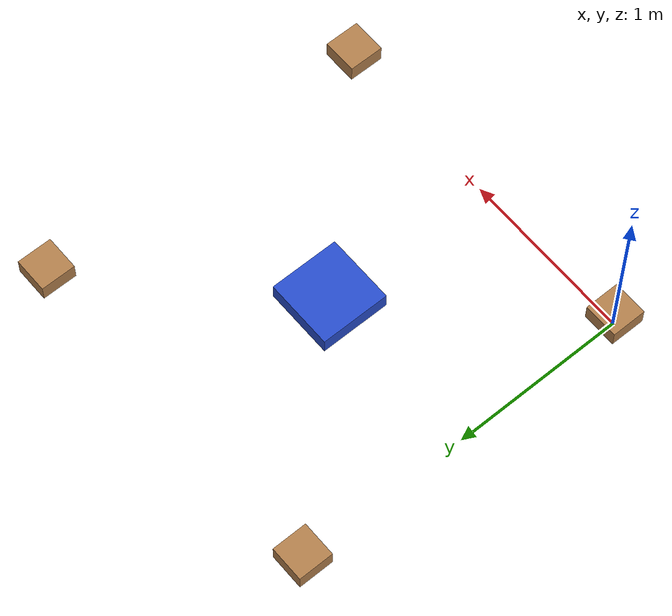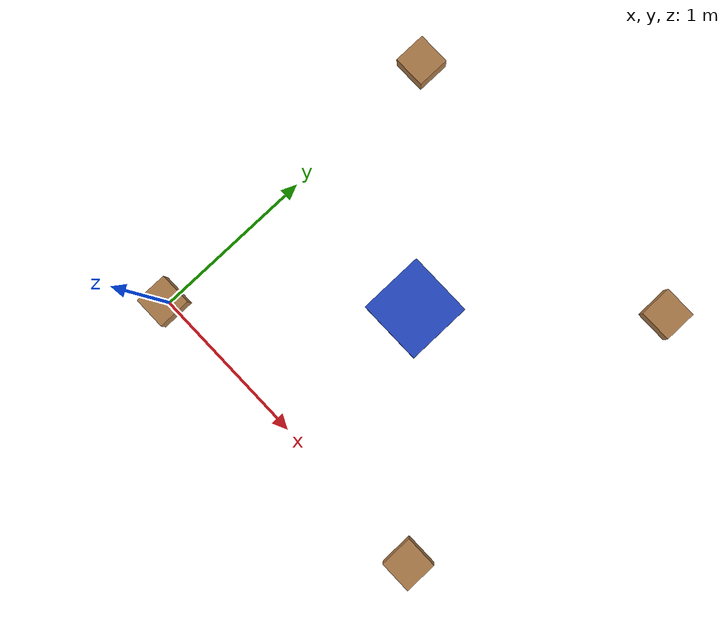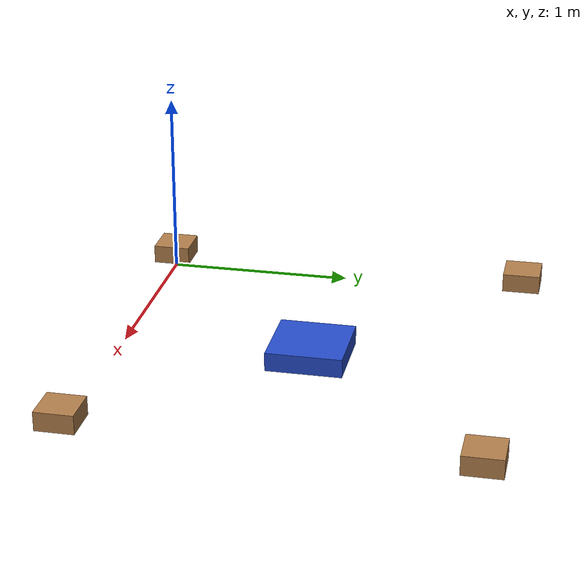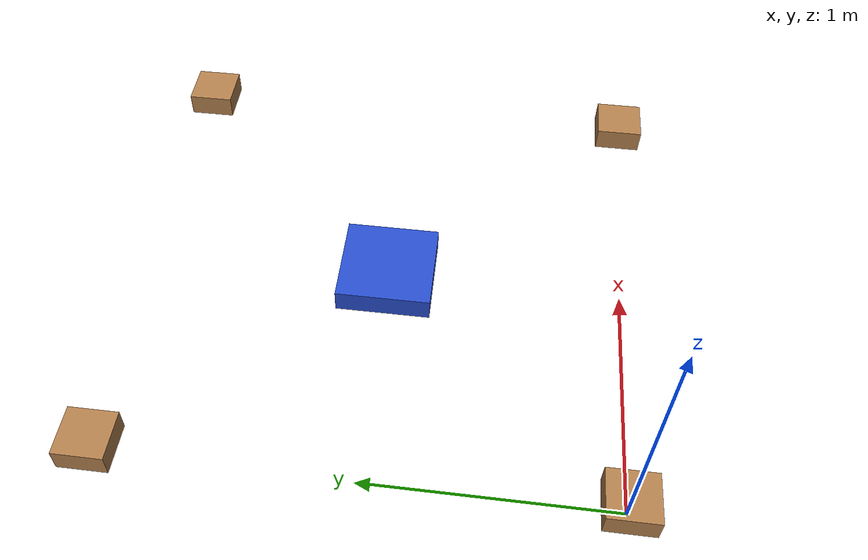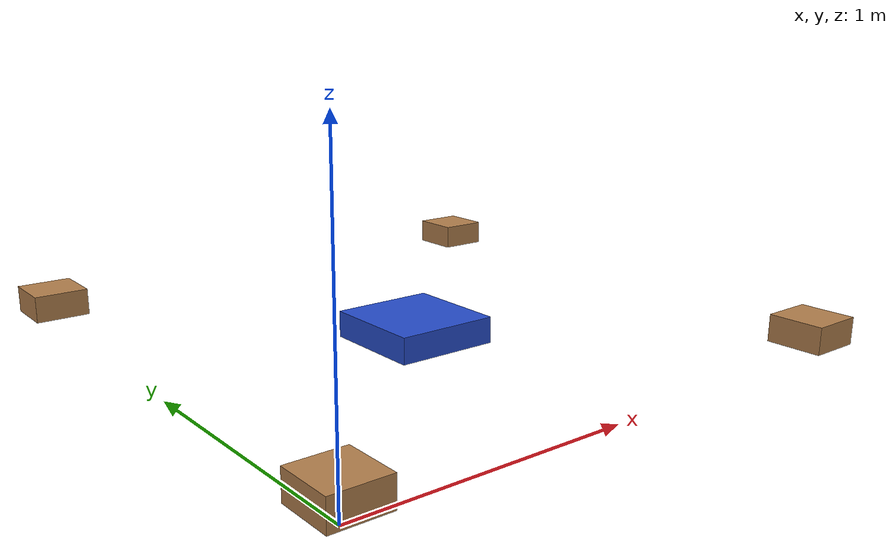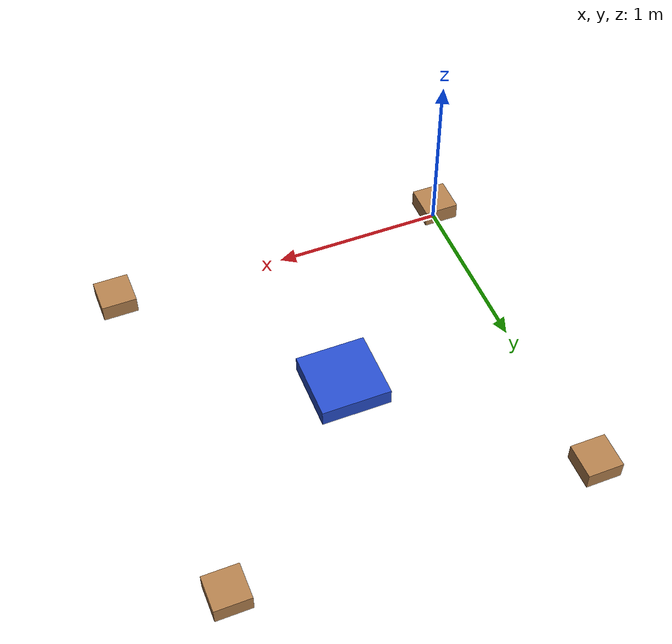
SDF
<?xml version="1.0" ?>
<sdf version="1.6">
  <world name="default">
    <!-- Include your environment or other models here -->

    <!-- Robot 1 -->
    <model name="robot1">
      <static>false</static>
      <link name="chassis">
        <pose>0 0 0.1 0 0 0</pose>
        <collision name="chassis_collision">
          <geometry>
            <box>
              <size>0.2 0.2 0.1</size>
            </box>
          </geometry>
        </collision>
        <visual name="chassis_visual">
          <geometry>
            <box>
              <size>0.2 0.2 0.1</size>
            </box>
          </geometry>
          <material>
            <script>
              <uri>file://media/materials/scripts/gazebo.material</uri>
              <name>Gazebo/Wood</name>
            </script>
          </material>
        </visual>
      </link>
      <!-- Add joints and wheels for differential drive motion -->
    </model>

    <!-- Robot 2 -->
    <model name="robot2">
      <static>false</static>
      <link name="chassis">
        <pose>2 0 0.1 0 0 0</pose>
        <collision name="chassis_collision">
          <geometry>
            <box>
              <size>0.2 0.2 0.1</size>
            </box>
          </geometry>
        </collision>
        <visual name="chassis_visual">
          <geometry>
            <box>
              <size>0.2 0.2 0.1</size>
            </box>
          </geometry>
          <material>
            <script>
              <uri>file://media/materials/scripts/gazebo.material</uri>
              <name>Gazebo/Wood</name>
            </script>
          </material>
        </visual>
      </link>
      <!-- Add joints and wheels for differential drive motion -->
    </model>

    <!-- Robot 3 -->
    <model name="robot3">
      <static>false</static>
      <link name="chassis">
        <pose>0 2 0.1 0 0 1.5708</pose>
        <collision name="chassis_collision">
          <geometry>
            <box>
              <size>0.2 0.2 0.1</size>
            </box>
          </geometry>
        </collision>
        <visual name="chassis_visual">
          <geometry>
            <box>
              <size>0.2 0.2 0.1</size>
            </box>
          </geometry>
          <material>
            <script>
              <uri>file://media/materials/scripts/gazebo.material</uri>
              <name>Gazebo/Wood</name>
            </script>
          </material>
        </visual>
      </link>
      <!-- Add joints and wheels for differential drive motion -->
    </model>

    <!-- Robot 4 -->
    <model name="robot4">
      <static>false</static>
      <link name="chassis">
        <pose>2 2 0.1 0 0 1.5708</pose>
        <collision name="chassis_collision">
          <geometry>
            <box>
              <size>0.2 0.2 0.1</size>
            </box>
          </geometry>
        </collision>
        <visual name="chassis_visual">
          <geometry>
            <box>
              <size>0.2 0.2 0.1</size>
            </box>
          </geometry>
          <material>
            <script>
              <uri>file://media/materials/scripts/gazebo.material</uri>
              <name>Gazebo/Wood</name>
            </script>
          </material>
        </visual>
      </link>
      <!-- Add joints and wheels for differential drive motion -->
    </model>

    <!-- Obstacle -->
    <model name="obstacle">
      <static>true</static>
      <link name="obstacle_link">
        <pose>1 1 0.05 0 0 0</pose>
        <collision name="obstacle_collision">
          <geometry>
            <box>
              <size>0.4 0.4 0.1</size>
            </box>
          </geometry>
        </collision>
        <visual name="obstacle_visual">
          <geometry>
            <box>
              <size>0.4 0.4 0.1</size>
            </box>
          </geometry>
          <material>
            <script>
              <uri>file://media/materials/scripts/gazebo.material</uri>
              <name>Gazebo/Blue</name>
            </script>
          </material>
        </visual>
      </link>
    </model>

  </world>
</sdf>
